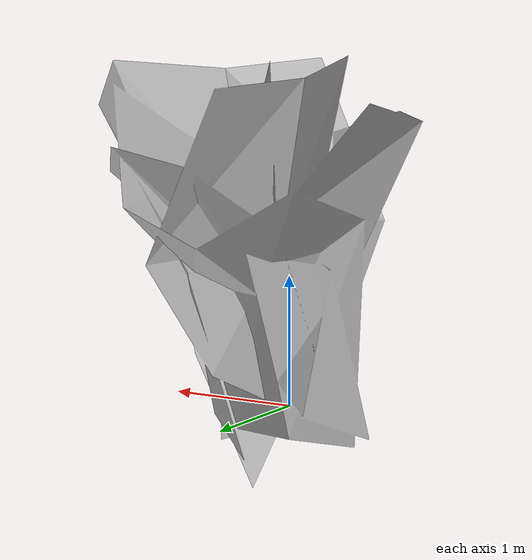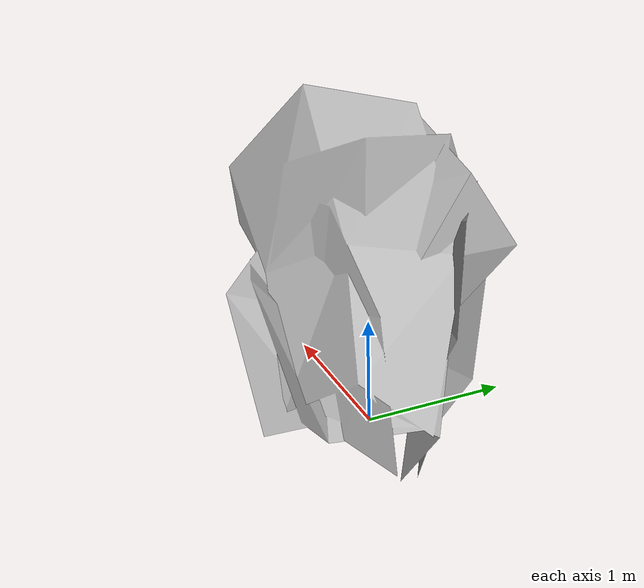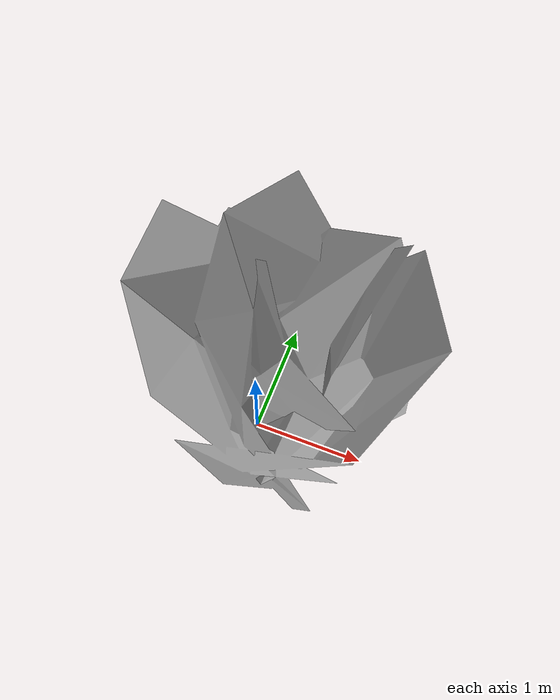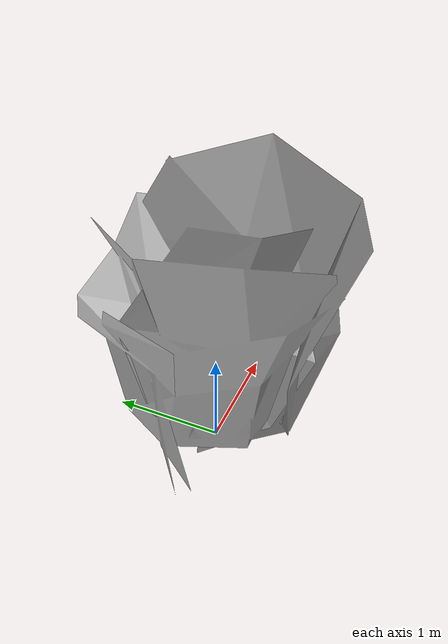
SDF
<?xml version="1.0"?>
<sdf version="1.4">
  <model name="plant">
    <static>false</static>
    <link name="link">
      <collision name="collision">
        <pose>0 0 0.115 0 0 0</pose>
        <geometry>
          <cylinder>
            <radius>0.14</radius>
            <length>0.23</length>
          </cylinder>
        </geometry>
      </collision>
      <visual name="visual">
        <geometry>
          <mesh>
            <uri>model://plant/meshes/plant.dae</uri>
<scale>2 2 2</scale>
          </mesh>
        </geometry>
      </visual>

    </link>
  </model>
</sdf>
